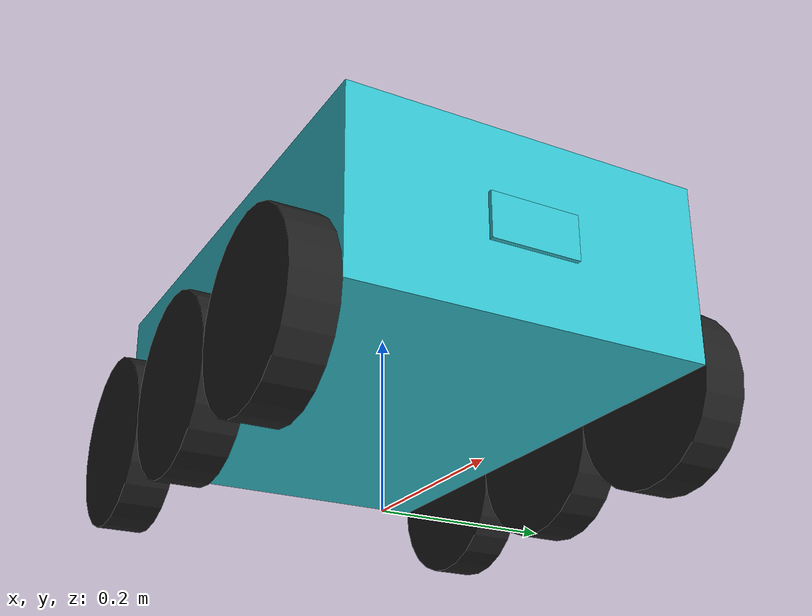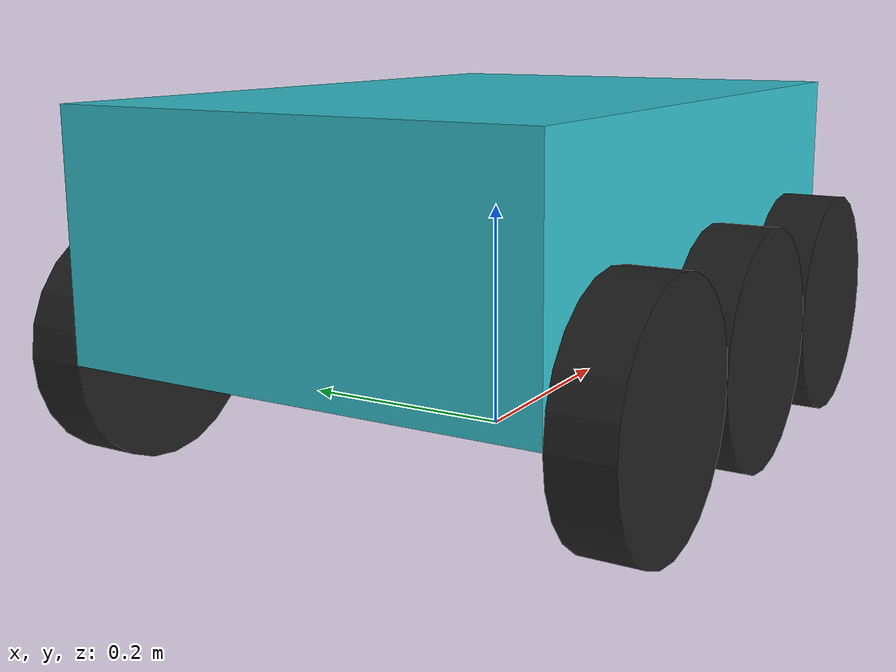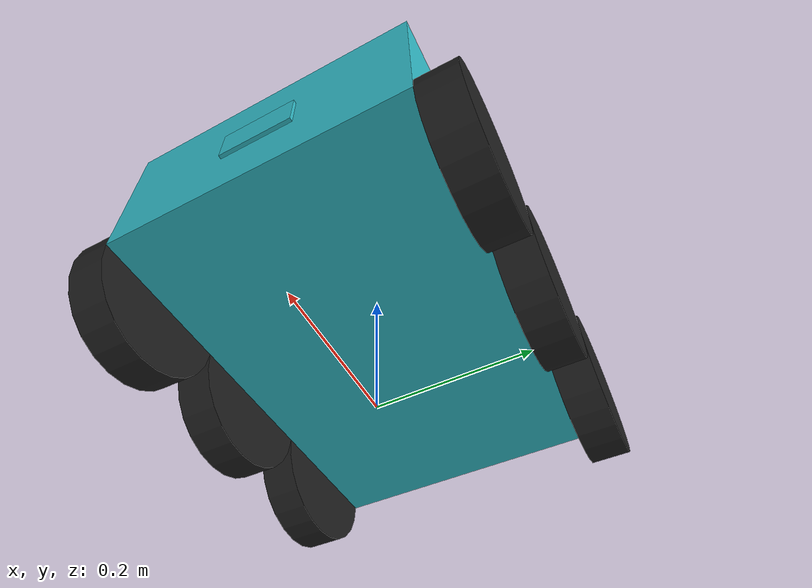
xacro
<?xml version = "1.0"?>
<robot name = "my_robot" xmlns:xacro="http://www.ros.org/wiki/xacro">
    <xacro:include filename = "properties.xacro" />
    <xacro:include filename = "properties_gazebo.xacro" />
    <xacro:include filename = "my_robot.xacro" />
    <xacro:include filename = "camera.xacro" />
</robot>

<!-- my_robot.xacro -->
<robot name = "my_robot" xmlns:xacro="http://www.ros.org/wiki/xacro">

    <xacro:property name = "base_width" value = "0.6" />
    <xacro:property name = "base_length" value = "0.4" />
    <xacro:property name = "base_height" value = "0.2" />

    <xacro:property name = "wheel_radius" value = "0.1" />
    <xacro:property name = "wheel_length" value = "0.05" />

    <xacro:macro name = "wheel_link" params = "prefix">
        <link name = "${prefix}_wheel_link">
            <visual>
                <geometry>
                    <cylinder radius = "${wheel_radius}" length = "${wheel_length}" />
                </geometry>
                <origin xyz = "0 0 0" rpy = "${pi/2} 0 0" />
                <material name = "black" />
            </visual>

            <collision>
                <geometry>
                    <cylinder radius = "${wheel_radius}" length = "${wheel_length}" />
                </geometry>
                <origin xyz = "0 0 0" rpy = "${pi/2} 0 0" />
            </collision>

            <xacro:cylinder_inertia m = "1.0" r = "${2*wheel_radius}"
                                              h = "${2*wheel_length}"
                                              xyz = "0 0 0"
                                              rpy = "${pi/2} 0 0" />
        </link>
    </xacro:macro>

    <link name = "base_footprint" />

    <link name = "base_link">
        <visual>
            <geometry>
                <box size = "${base_width} ${base_length} ${base_height}" />
            </geometry>
            <origin xyz = "0 0 0" rpy = "0 0 0" />
            <material name = "cyan" />
        </visual>
        <collision>
            <geometry>
                <box size = "${base_width} ${base_length} ${base_height}" />
            </geometry>
            <origin xyz = "0 0 0" rpy = "0 0 0" />
        </collision>

        <xacro:box_inertia m = "5.0" l = "${2*base_length}"
                                     w = "${2*base_width}"
                                     h = "${2*base_height}"
                                     xyz = "0 0 0"
                                     rpy = "0 0 0" />
    </link>

    <xacro:wheel_link prefix = "right_front" />
    <xacro:wheel_link prefix = "left_front" />

    <xacro:wheel_link prefix = "right_back" />
    <xacro:wheel_link prefix = "left_back" />

    <xacro:wheel_link prefix = "right_mid" />
    <xacro:wheel_link prefix = "left_mid" />

    <joint name = "base_joint" type = "fixed">
        <parent link = "base_footprint" />
        <child link  = "base_link" />
        <origin xyz = "0 0 ${(base_height / 2) + wheel_radius}" rpy = "0 0 0" />
    </joint>

    <joint name = "base_right_front_wheel_joint" type = "continuous">
        <parent link = "base_link" />
        <child link  = "right_front_wheel_link" />
        <origin xyz = "${(-(base_width / 2)) + wheel_radius}
                       ${-((base_length / 2) + (wheel_length / 2))}
                       ${-wheel_radius}"
                       rpy = "0 0 0" />
        <axis xyz = "0 1 0" />
    </joint>

    <joint name = "base_left_front_wheel_joint" type = "continuous">
        <parent link = "base_link" />
        <child link  = "left_front_wheel_link" />
        <origin xyz = "${(-(base_width / 2)) + wheel_radius}
                       ${(base_length / 2) + (wheel_length / 2)}
                       ${-wheel_radius}"
                       rpy = "0 0 0" />
        <axis xyz = "0 1 0" />
    </joint>

    <joint name = "base_left_back_wheel_joint" type = "continuous">
        <parent link = "base_link" />
        <child link  = "left_back_wheel_link" />
        <origin xyz = "${(+(base_width / 2)) - wheel_radius}
                       ${(base_length / 2) + (wheel_length / 2)}
                       ${-wheel_radius}"
                       rpy = "0 0 0" />
        <axis xyz = "0 1 0" />
    </joint>

        <joint name = "base_right_back_wheel_joint" type = "continuous">
        <parent link = "base_link" />
        <child link  = "right_back_wheel_link" />
        <origin xyz = "${((base_width / 2)) - wheel_radius}
                       ${-((base_length / 2) + (wheel_length / 2))}
                       ${-wheel_radius}"
                       rpy = "0 0 0" />
        <axis xyz = "0 1 0" />
    </joint>

        <joint name = "base_right_mid_wheel_joint" type = "continuous">
        <parent link = "base_link" />
        <child link  = "right_mid_wheel_link" />
        <origin xyz = "0
                       ${-((base_length / 2) + (wheel_length / 2))}
                       ${-wheel_radius}"
                       rpy = "0 0 0" />
        <axis xyz = "0 1 0" />
    </joint>

    <joint name = "base_left_mid_wheel_joint" type = "continuous">
        <parent link = "base_link" />
        <child link  = "left_mid_wheel_link" />
        <origin xyz = "0
                       ${(base_length / 2) + (wheel_length / 2)}
                       ${-wheel_radius}"
                       rpy = "0 0 0" />
        <axis xyz = "0 1 0" />
    </joint>

</robot>

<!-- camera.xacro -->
<robot name = "my_robot" xmlns:xacro="http://www.ros.org/wiki/xacro">
    <xacro:property name = "camera_width" value = "0.1" />
    <xacro:property name = "camera_length" value = "0.01" />
    <xacro:property name = "camera_height" value = "0.05" />

    <link name="camera_link">
        <visual>
            <geometry>
                <box size="${camera_length} ${camera_width} ${camera_height}" />
            </geometry>
            <origin xyz="0 0 0" rpy="0 0 0" />
            <material name="cyan" />
        </visual>
        <collision>
            <geometry>
                <box size="${camera_length} ${camera_width} ${camera_height}" />
            </geometry>
            <origin xyz="0 0 0" rpy="0 0 0" />
        </collision>
        <xacro:box_inertia m="5.0" l="${2*camera_length}" w="${2*camera_width}" h="${2*camera_height}" xyz="0 0 0" rpy="0 0 0" />
    </link>

    <joint name = "base_camera_joint" type = "fixed">
        <parent link = "base_link" />
        <child link  = "camera_link" />
        <origin xyz = "0.3 0 0" rpy = "0 0 0" />
    </joint>

    <gazebo reference = "camera_link">

        <material>Gazebo/Grey</material>
        <sensor name = "camera_sensor" type = "camera" >
            <pose>0 0 0 0 0 0</pose>
            <visualize>true</visualize>
            <update_rate>10.0</update_rate>
            <plugin name = "caamera_controller" filename = "libgazebo_ros_camera.so">
                <frame_name>camera_link</frame_name>
            </plugin>
        </sensor>

    </gazebo>

</robot>
